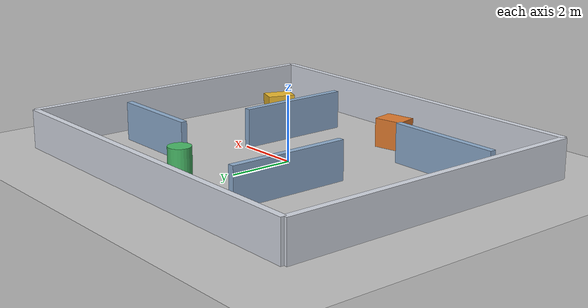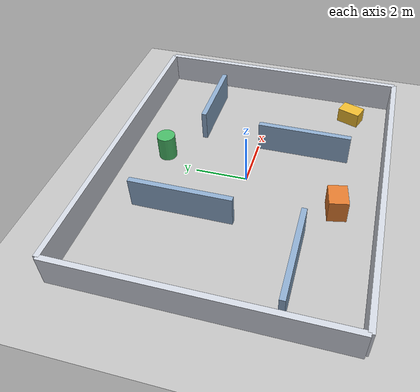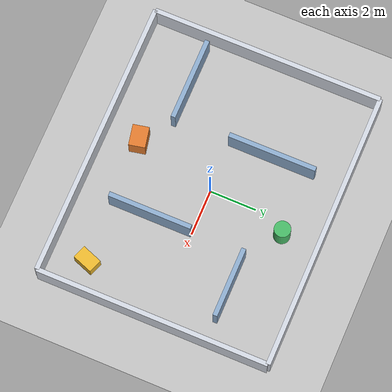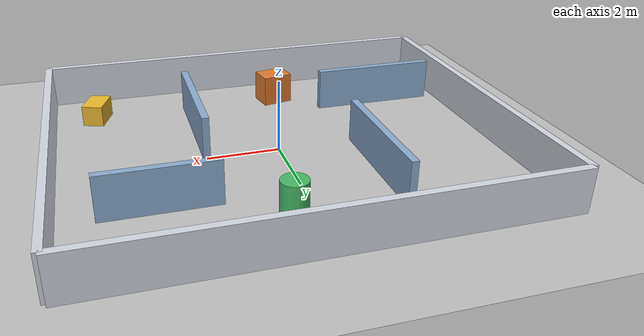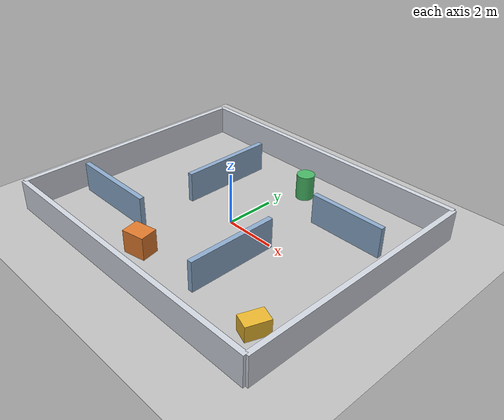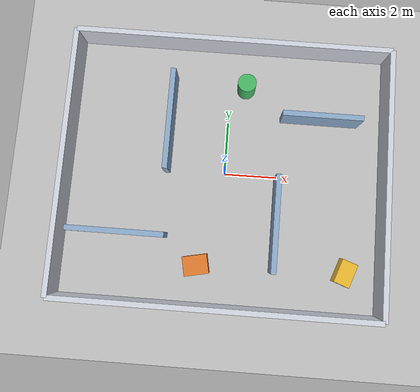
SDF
<?xml version="1.0"?>
<sdf version="1.10">
  <world name="slam_world">
    <physics name="default_physics" type="ode">
      <max_step_size>0.004</max_step_size>
      <real_time_factor>1.0</real_time_factor>
      <real_time_update_rate>250</real_time_update_rate>
    </physics>

    <plugin
      filename="gz-sim-physics-system"
      name="gz::sim::systems::Physics"/>
    <plugin
      filename="gz-sim-user-commands-system"
      name="gz::sim::systems::UserCommands"/>
    <plugin
      filename="gz-sim-scene-broadcaster-system"
      name="gz::sim::systems::SceneBroadcaster"/>
    <plugin
      filename="gz-sim-imu-system"
      name="gz::sim::systems::Imu"/>
    <plugin
      filename="gz-sim-sensors-system"
      name="gz::sim::systems::Sensors">
      <render_engine>ogre2</render_engine>
    </plugin>

    <gravity>0 0 -9.81</gravity>

    <scene>
      <ambient>0.45 0.45 0.45 1</ambient>
      <background>0.75 0.80 0.85 1</background>
      <shadows>false</shadows>
      <grid>true</grid>
    </scene>

    <light name="sun" type="directional">
      <cast_shadows>false</cast_shadows>
      <pose>0 0 10 0 0 0</pose>
      <diffuse>0.9 0.9 0.9 1</diffuse>
      <specular>0.2 0.2 0.2 1</specular>
      <attenuation>
        <range>1000</range>
        <constant>0.9</constant>
        <linear>0.01</linear>
        <quadratic>0.001</quadratic>
      </attenuation>
      <direction>-0.4 0.2 -1.0</direction>
    </light>

    <model name="ground_plane">
      <static>true</static>
      <link name="ground_link">
        <collision name="ground_collision">
          <geometry>
            <plane>
              <normal>0 0 1</normal>
              <size>100 100</size>
            </plane>
          </geometry>
          <surface>
            <friction>
              <ode>
                <mu>1.0</mu>
                <mu2>1.0</mu2>
              </ode>
            </friction>
          </surface>
        </collision>
        <visual name="ground_visual">
          <geometry>
            <plane>
              <normal>0 0 1</normal>
              <size>100 100</size>
            </plane>
          </geometry>
          <material>
            <ambient>0.65 0.65 0.65 1</ambient>
            <diffuse>0.75 0.75 0.75 1</diffuse>
            <specular>0.05 0.05 0.05 1</specular>
          </material>
        </visual>
      </link>
    </model>

    <model name="slam_environment">
      <static>true</static>
      <link name="walls_and_landmarks">
        <!-- Perimeter: 12 m x 10 m. -->
        <collision name="north_wall_collision">
          <pose>0 5.0 0.6 0 0 0</pose>
          <geometry><box><size>12.0 0.2 1.2</size></box></geometry>
        </collision>
        <visual name="north_wall_visual">
          <pose>0 5.0 0.6 0 0 0</pose>
          <geometry><box><size>12.0 0.2 1.2</size></box></geometry>
          <material>
            <ambient>0.82 0.84 0.88 1</ambient>
            <diffuse>0.82 0.84 0.88 1</diffuse>
          </material>
        </visual>

        <collision name="south_wall_collision">
          <pose>0 -5.0 0.6 0 0 0</pose>
          <geometry><box><size>12.0 0.2 1.2</size></box></geometry>
        </collision>
        <visual name="south_wall_visual">
          <pose>0 -5.0 0.6 0 0 0</pose>
          <geometry><box><size>12.0 0.2 1.2</size></box></geometry>
          <material>
            <ambient>0.82 0.84 0.88 1</ambient>
            <diffuse>0.82 0.84 0.88 1</diffuse>
          </material>
        </visual>

        <collision name="east_wall_collision">
          <pose>6.0 0 0.6 0 0 0</pose>
          <geometry><box><size>0.2 10.0 1.2</size></box></geometry>
        </collision>
        <visual name="east_wall_visual">
          <pose>6.0 0 0.6 0 0 0</pose>
          <geometry><box><size>0.2 10.0 1.2</size></box></geometry>
          <material>
            <ambient>0.82 0.84 0.88 1</ambient>
            <diffuse>0.82 0.84 0.88 1</diffuse>
          </material>
        </visual>

        <collision name="west_wall_collision">
          <pose>-6.0 0 0.6 0 0 0</pose>
          <geometry><box><size>0.2 10.0 1.2</size></box></geometry>
        </collision>
        <visual name="west_wall_visual">
          <pose>-6.0 0 0.6 0 0 0</pose>
          <geometry><box><size>0.2 10.0 1.2</size></box></geometry>
          <material>
            <ambient>0.82 0.84 0.88 1</ambient>
            <diffuse>0.82 0.84 0.88 1</diffuse>
          </material>
        </visual>

        <!-- Interior partitions create corridors and a traversable loop. -->
        <collision name="partition_a_collision">
          <pose>-2.2 1.8 0.6 0 0 0</pose>
          <geometry><box><size>0.2 3.8 1.2</size></box></geometry>
        </collision>
        <visual name="partition_a_visual">
          <pose>-2.2 1.8 0.6 0 0 0</pose>
          <geometry><box><size>0.2 3.8 1.2</size></box></geometry>
          <material>
            <ambient>0.55 0.67 0.80 1</ambient>
            <diffuse>0.55 0.67 0.80 1</diffuse>
          </material>
        </visual>

        <collision name="partition_b_collision">
          <pose>2.0 -1.8 0.6 0 0 0</pose>
          <geometry><box><size>0.2 3.6 1.2</size></box></geometry>
        </collision>
        <visual name="partition_b_visual">
          <pose>2.0 -1.8 0.6 0 0 0</pose>
          <geometry><box><size>0.2 3.6 1.2</size></box></geometry>
          <material>
            <ambient>0.55 0.67 0.80 1</ambient>
            <diffuse>0.55 0.67 0.80 1</diffuse>
          </material>
        </visual>

        <collision name="partition_c_collision">
          <pose>3.5 2.3 0.6 0 0 0</pose>
          <geometry><box><size>3.0 0.2 1.2</size></box></geometry>
        </collision>
        <visual name="partition_c_visual">
          <pose>3.5 2.3 0.6 0 0 0</pose>
          <geometry><box><size>3.0 0.2 1.2</size></box></geometry>
          <material>
            <ambient>0.55 0.67 0.80 1</ambient>
            <diffuse>0.55 0.67 0.80 1</diffuse>
          </material>
        </visual>

        <collision name="partition_d_collision">
          <pose>-3.8 -2.5 0.6 0 0 0</pose>
          <geometry><box><size>3.6 0.2 1.2</size></box></geometry>
        </collision>
        <visual name="partition_d_visual">
          <pose>-3.8 -2.5 0.6 0 0 0</pose>
          <geometry><box><size>3.6 0.2 1.2</size></box></geometry>
          <material>
            <ambient>0.55 0.67 0.80 1</ambient>
            <diffuse>0.55 0.67 0.80 1</diffuse>
          </material>
        </visual>

        <!-- Unequal landmarks reduce scan-matching symmetry. -->
        <collision name="large_box_collision">
          <pose>-0.8 -3.5 0.45 0 0 0.20</pose>
          <geometry><box><size>0.9 0.7 0.9</size></box></geometry>
        </collision>
        <visual name="large_box_visual">
          <pose>-0.8 -3.5 0.45 0 0 0.20</pose>
          <geometry><box><size>0.9 0.7 0.9</size></box></geometry>
          <material>
            <ambient>0.88 0.48 0.18 1</ambient>
            <diffuse>0.88 0.48 0.18 1</diffuse>
          </material>
        </visual>

        <collision name="small_box_collision">
          <pose>4.7 -3.4 0.30 0 0 -0.35</pose>
          <geometry><box><size>0.6 0.9 0.6</size></box></geometry>
        </collision>
        <visual name="small_box_visual">
          <pose>4.7 -3.4 0.30 0 0 -0.35</pose>
          <geometry><box><size>0.6 0.9 0.6</size></box></geometry>
          <material>
            <ambient>0.92 0.72 0.18 1</ambient>
            <diffuse>0.92 0.72 0.18 1</diffuse>
          </material>
        </visual>

        <collision name="cylinder_collision">
          <pose>0.6 3.4 0.50 0 0 0</pose>
          <geometry><cylinder><radius>0.35</radius><length>1.0</length></cylinder></geometry>
        </collision>
        <visual name="cylinder_visual">
          <pose>0.6 3.4 0.50 0 0 0</pose>
          <geometry><cylinder><radius>0.35</radius><length>1.0</length></cylinder></geometry>
          <material>
            <ambient>0.28 0.72 0.40 1</ambient>
            <diffuse>0.28 0.72 0.40 1</diffuse>
          </material>
        </visual>
      </link>
    </model>

    <gui fullscreen="false">
      <plugin filename="MinimalScene" name="3D View">
        <gz-gui>
          <title>3D View</title>
          <property key="showTitleBar" type="bool">false</property>
          <property key="state" type="string">docked</property>
        </gz-gui>
        <engine>ogre2</engine>
        <scene>scene</scene>
        <ambient_light>0.4 0.4 0.4</ambient_light>
        <background_color>0.75 0.80 0.85</background_color>
        <camera_pose>-2.5 -2.5 2.0 0 0.45 0.8</camera_pose>
        <camera_clip>
          <near>0.10</near>
          <far>1000</far>
        </camera_clip>
      </plugin>
      <plugin filename="GzSceneManager" name="Scene Manager">
        <gz-gui>
          <property key="resizable" type="bool">false</property>
          <property key="width" type="double">5</property>
          <property key="height" type="double">5</property>
          <property key="state" type="string">floating</property>
          <property key="showTitleBar" type="bool">false</property>
        </gz-gui>
      </plugin>
      <plugin filename="InteractiveViewControl" name="Interactive view control">
        <gz-gui>
          <property key="resizable" type="bool">false</property>
          <property key="width" type="double">5</property>
          <property key="height" type="double">5</property>
          <property key="state" type="string">floating</property>
          <property key="showTitleBar" type="bool">false</property>
        </gz-gui>
      </plugin>
      <plugin filename="CameraTracking" name="Camera Tracking">
        <gz-gui>
          <property key="resizable" type="bool">false</property>
          <property key="width" type="double">5</property>
          <property key="height" type="double">5</property>
          <property key="state" type="string">floating</property>
          <property key="showTitleBar" type="bool">false</property>
        </gz-gui>
      </plugin>
      <plugin filename="WorldControl" name="World control"/>
      <plugin filename="WorldStats" name="World stats"/>
      <plugin filename="EntityTree" name="Entity tree"/>
    </gui>
  </world>
</sdf>
